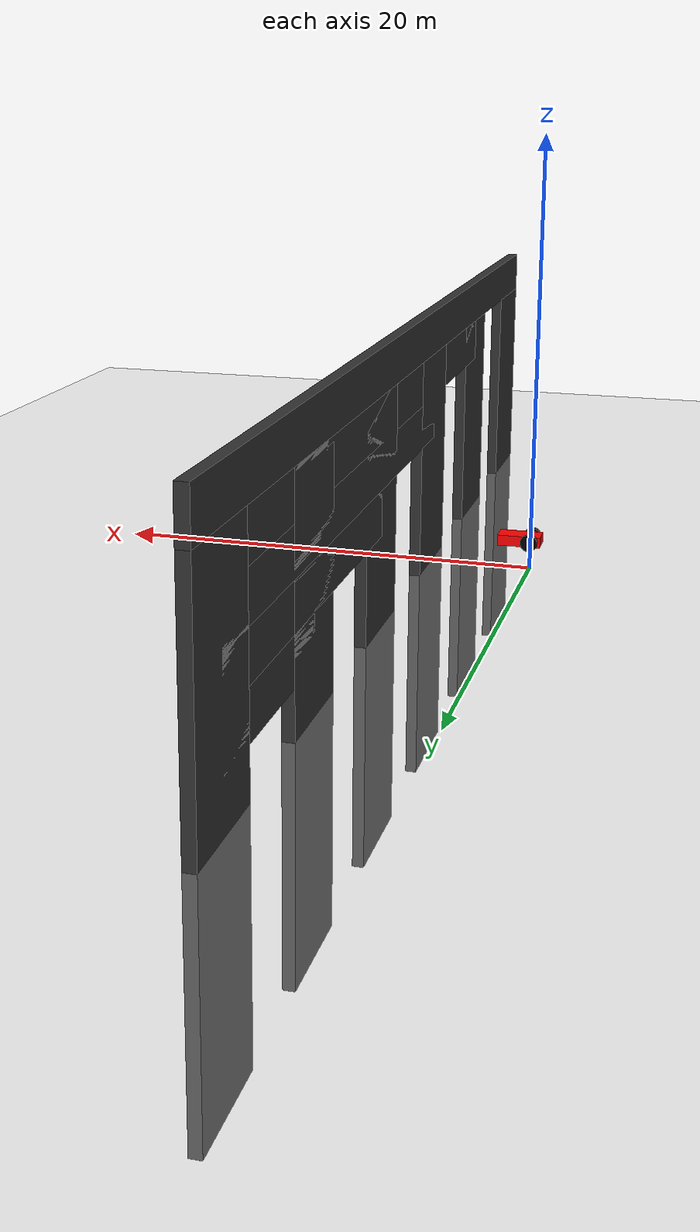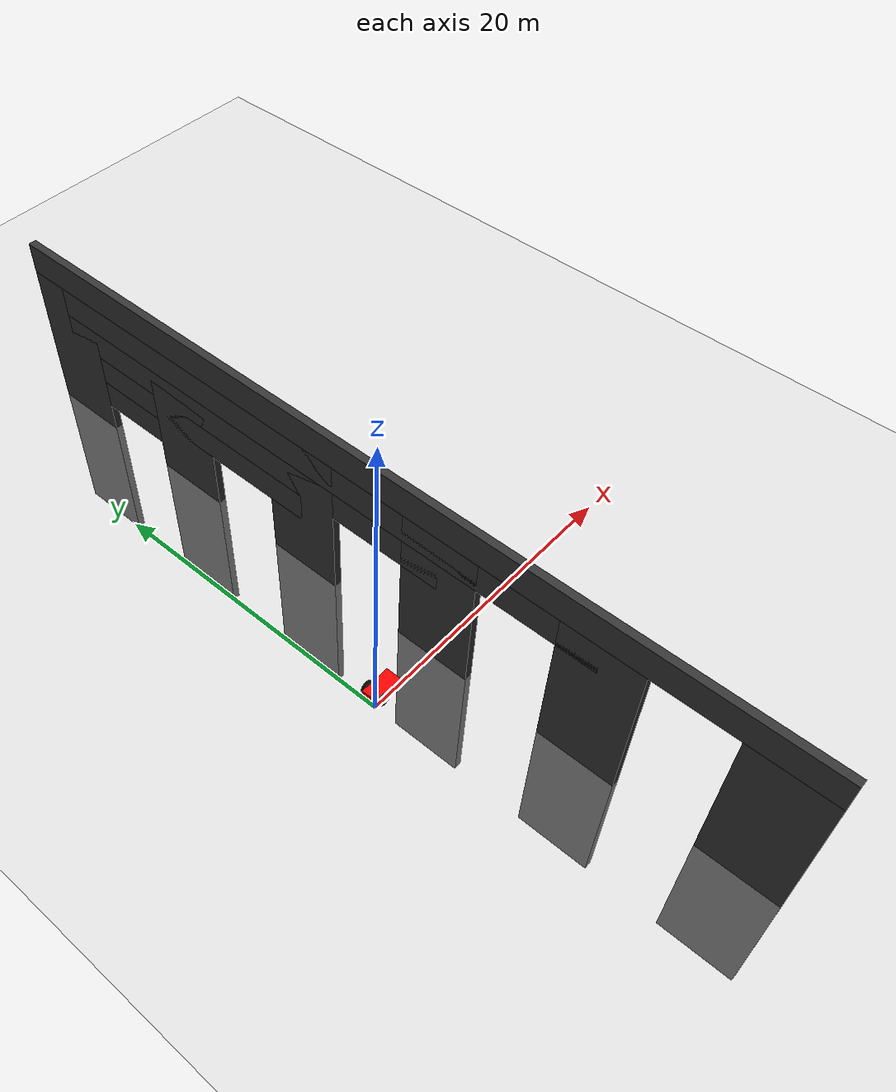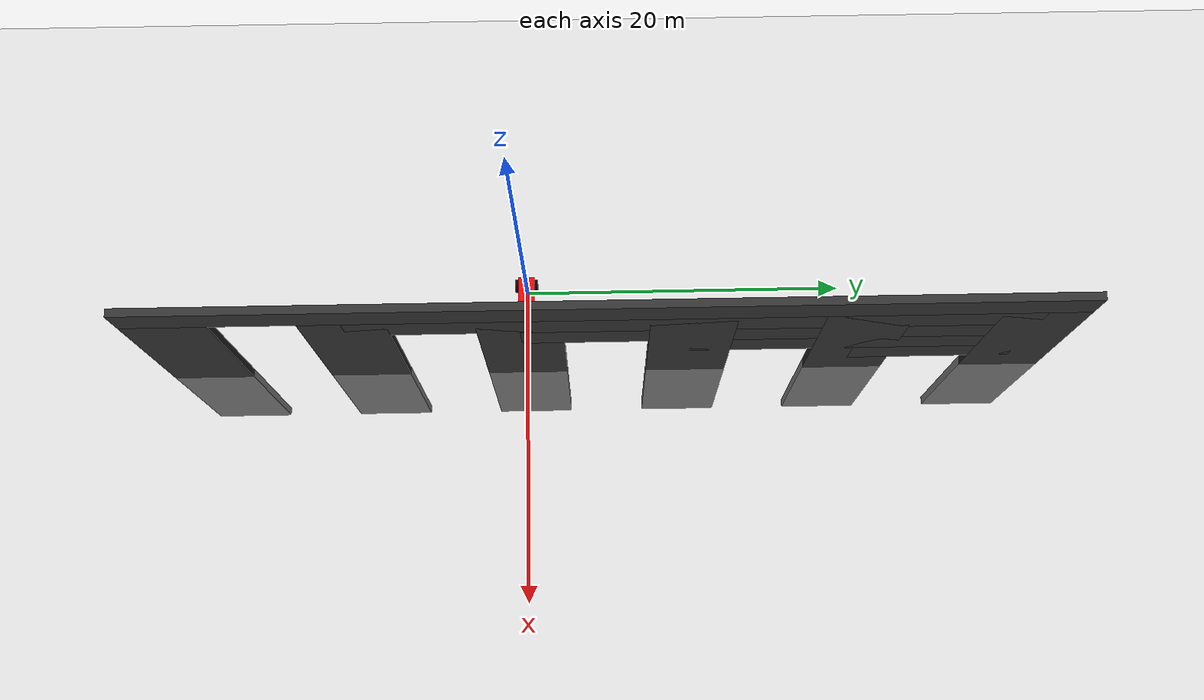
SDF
<?xml version="1.0" ?>
<sdf version="1.8">
    <world name="sensor_world">
        <physics name="1ms" type="ignored">
            <max_step_size>0.001</max_step_size>
            <real_time_factor>1.0</real_time_factor>
        </physics>
        <plugin
            filename="gz-sim-physics-system"
            name="gz::sim::systems::Physics">
        </plugin>
        <plugin
            filename="gz-sim-user-commands-system"
            name="gz::sim::systems::UserCommands">
        </plugin>
        <plugin
            filename="gz-sim-scene-broadcaster-system"
            name="gz::sim::systems::SceneBroadcaster">
        </plugin>
        <plugin
            filename="gz-sim-imu-system"
            name="gz::sim::systems::Imu">
        </plugin>
        <plugin
            filename="gz-sim-sensors-system"
            name="gz::sim::systems::Sensors">
            <render_engine>ogre2</render_engine>
        </plugin>
        <plugin
            filename="gz-sim-contact-system"
            name="gz::sim::systems::Contact">
        </plugin>
        <gui fullscreen="0">

          <!-- 3D scene -->
          <plugin filename="MinimalScene" name="3D View">
            <gz-gui>
              <title>3D View</title>
              <property type="bool" key="showTitleBar">false</property>
              <property type="string" key="state">docked</property>
            </gz-gui>

            <engine>ogre2</engine>
            <scene>scene</scene>
            <ambient_light>0.4 0.4 0.4</ambient_light>
            <background_color>0.8 0.8 0.8</background_color>
            <camera_pose>-6 0 6 0 0.5 0</camera_pose>
            <camera_clip>
              <near>0.25</near>
              <far>25000</far>
            </camera_clip>
          </plugin>

          <plugin filename="EntityContextMenuPlugin" name="Entity context menu">
            <gz-gui>
              <property key="state" type="string">floating</property>
              <property key="width" type="double">5</property>
              <property key="height" type="double">5</property>
              <property key="showTitleBar" type="bool">false</property>
            </gz-gui>
          </plugin>
          <plugin filename="GzSceneManager" name="Scene Manager">
            <gz-gui>
              <property key="resizable" type="bool">false</property>
              <property key="width" type="double">5</property>
              <property key="height" type="double">5</property>
              <property key="state" type="string">floating</property>
              <property key="showTitleBar" type="bool">false</property>
            </gz-gui>
          </plugin>
          <plugin filename="InteractiveViewControl" name="Interactive view control">
            <gz-gui>
              <property key="resizable" type="bool">false</property>
              <property key="width" type="double">5</property>
              <property key="height" type="double">5</property>
              <property key="state" type="string">floating</property>
              <property key="showTitleBar" type="bool">false</property>
            </gz-gui>
          </plugin>
          <plugin filename="CameraTracking" name="Camera Tracking">
            <gz-gui>
              <property key="resizable" type="bool">false</property>
              <property key="width" type="double">5</property>
              <property key="height" type="double">5</property>
              <property key="state" type="string">floating</property>
              <property key="showTitleBar" type="bool">false</property>
            </gz-gui>
          </plugin>
          <plugin filename="MarkerManager" name="Marker manager">
            <gz-gui>
              <property key="resizable" type="bool">false</property>
              <property key="width" type="double">5</property>
              <property key="height" type="double">5</property>
              <property key="state" type="string">floating</property>
              <property key="showTitleBar" type="bool">false</property>
            </gz-gui>
          </plugin>
          <plugin filename="SelectEntities" name="Select Entities">
            <gz-gui>
              <anchors target="Select entities">
                <line own="right" target="right"/>
                <line own="top" target="top"/>
              </anchors>
              <property key="resizable" type="bool">false</property>
              <property key="width" type="double">5</property>
              <property key="height" type="double">5</property>
              <property key="state" type="string">floating</property>
              <property key="showTitleBar" type="bool">false</property>
            </gz-gui>
          </plugin>
          <plugin filename="VisualizationCapabilities" name="Visualization Capabilities">
            <gz-gui>
              <property key="resizable" type="bool">false</property>
              <property key="width" type="double">5</property>
              <property key="height" type="double">5</property>
              <property key="state" type="string">floating</property>
              <property key="showTitleBar" type="bool">false</property>
            </gz-gui>
          </plugin>

          <plugin filename="Spawn" name="Spawn Entities">
            <gz-gui>
              <anchors target="Select entities">
                <line own="right" target="right"/>
                <line own="top" target="top"/>
              </anchors>
              <property key="resizable" type="bool">false</property>
              <property key="width" type="double">5</property>
              <property key="height" type="double">5</property>
              <property key="state" type="string">floating</property>
              <property key="showTitleBar" type="bool">false</property>
            </gz-gui>
          </plugin>

          <plugin filename="WorldControl" name="World control">
            <gz-gui>
              <title>World control</title>
              <property type="bool" key="showTitleBar">false</property>
              <property type="bool" key="resizable">false</property>
              <property type="double" key="height">72</property>
              <property type="double" key="width">121</property>
              <property type="double" key="z">1</property>

              <property type="string" key="state">floating</property>
              <anchors target="3D View">
                <line own="left" target="left"/>
                <line own="bottom" target="bottom"/>
              </anchors>
            </gz-gui>

            <play_pause>true</play_pause>
            <step>true</step>
            <start_paused>true</start_paused>
            <use_event>true</use_event>

          </plugin>

          <plugin filename="WorldStats" name="World stats">
            <gz-gui>
              <title>World stats</title>
              <property type="bool" key="showTitleBar">false</property>
              <property type="bool" key="resizable">false</property>
              <property type="double" key="height">110</property>
              <property type="double" key="width">290</property>
              <property type="double" key="z">1</property>

              <property type="string" key="state">floating</property>
              <anchors target="3D View">
                <line own="right" target="right"/>
                <line own="bottom" target="bottom"/>
              </anchors>
            </gz-gui>

            <sim_time>true</sim_time>
            <real_time>true</real_time>
            <real_time_factor>true</real_time_factor>
            <iterations>true</iterations>
          </plugin>

          <plugin filename="Shapes" name="Shapes">
            <gz-gui>
              <property key="resizable" type="bool">false</property>
              <property key="x" type="double">0</property>
              <property key="y" type="double">0</property>
              <property key="width" type="double">250</property>
              <property key="height" type="double">50</property>
              <property key="state" type="string">floating</property>
              <property key="showTitleBar" type="bool">false</property>
              <property key="cardBackground" type="string">#666666</property>
            </gz-gui>
          </plugin>

          <plugin filename="Lights" name="Lights">
            <gz-gui>
              <property key="resizable" type="bool">false</property>
              <property key="x" type="double">250</property>
              <property key="y" type="double">0</property>
              <property key="width" type="double">150</property>
              <property key="height" type="double">50</property>
              <property key="state" type="string">floating</property>
              <property key="showTitleBar" type="bool">false</property>
              <property key="cardBackground" type="string">#666666</property>
            </gz-gui>
          </plugin>

          <plugin filename="TransformControl" name="Transform control">
            <gz-gui>
              <property key="resizable" type="bool">false</property>
              <property key="x" type="double">0</property>
              <property key="y" type="double">50</property>
              <property key="width" type="double">250</property>
              <property key="height" type="double">50</property>
              <property key="state" type="string">floating</property>
              <property key="showTitleBar" type="bool">false</property>
              <property key="cardBackground" type="string">#777777</property>
            </gz-gui>
          </plugin>

          <plugin filename="Screenshot" name="Screenshot">
            <gz-gui>
              <property key="resizable" type="bool">false</property>
              <property key="x" type="double">250</property>
              <property key="y" type="double">50</property>
              <property key="width" type="double">50</property>
              <property key="height" type="double">50</property>
              <property key="state" type="string">floating</property>
              <property key="showTitleBar" type="bool">false</property>
              <property key="cardBackground" type="string">#777777</property>
            </gz-gui>
          </plugin>

          <plugin filename="VideoRecorder" name="VideoRecorder">
            <gz-gui>
              <property key="resizable" type="bool">false</property>
              <property key="x" type="double">300</property>
              <property key="y" type="double">50</property>
              <property key="width" type="double">50</property>
              <property key="height" type="double">50</property>
              <property key="state" type="string">floating</property>
              <property key="showTitleBar" type="bool">false</property>
              <property key="cardBackground" type="string">#777777</property>
            </gz-gui>

            <record_video>
              <use_sim_time>true</use_sim_time>
              <lockstep>false</lockstep>
              <bitrate>4000000</bitrate>
            </record_video>
          </plugin>

          <plugin filename="ComponentInspector" name="Component inspector">
            <gz-gui>
              <property type="string" key="state">docked_collapsed</property>
            </gz-gui>
          </plugin>

          <plugin filename="EntityTree" name="Entity tree">
            <gz-gui>
              <property type="string" key="state">docked_collapsed</property>
            </gz-gui>
          </plugin>

          <plugin filename="ViewAngle" name="View angle">
            <gz-gui>
              <property type="string" key="state">docked_collapsed</property>
            </gz-gui>
          </plugin>

            <plugin filename="KeyPublisher" name="Key Publisher"/>

        </gui>

        <light type="directional" name="sun">
            <cast_shadows>true</cast_shadows>
            <pose>0 0 10 0 0 0</pose>
            <diffuse>0.8 0.8 0.8 1</diffuse>
            <specular>0.2 0.2 0.2 1</specular>
            <attenuation>
                <range>1000</range>
                <constant>0.9</constant>
                <linear>0.01</linear>
                <quadratic>0.001</quadratic>
            </attenuation>
            <direction>-0.5 0.1 -0.9</direction>
        </light>

        <model name="ground_plane">
            <static>true</static>
            <link name="link">
                <collision name="collision">
                <geometry>
                    <plane>
                    <normal>0 0 1</normal>
                    </plane>
                </geometry>
                </collision>
                <visual name="visual">
                <geometry>
                    <plane>
                    <normal>0 0 1</normal>
                    <size>100 100</size>
                    </plane>
                </geometry>
                <material>
                    <ambient>0.8 0.8 0.8 1</ambient>
                    <diffuse>0.8 0.8 0.8 1</diffuse>
                    <specular>0.8 0.8 0.8 1</specular>
                </material>
                </visual>
            </link>
        </model>

        <model name='vehicle_blue' canonical_link='chassis'>
            <pose relative_to='world'>0 0 1 0 0 0</pose>

            <frame name="camera_frame" attached_to='chassis'>
                <pose>0.8 0 0.5 0 0 0</pose>
            </frame>

            <link name='chassis'>
                <pose relative_to='__model__'>0.5 0 0.4 0 0 0</pose>
                <inertial>
                    <mass>1.14395</mass>
                    <inertia>
                        <ixx>0.126164</ixx>
                        <ixy>0</ixy>
                        <ixz>0</ixz>
                        <iyy>0.416519</iyy>
                        <iyz>0</iyz>
                        <izz>0.481014</izz>
                    </inertia>
                </inertial>
                <visual name='visual'>
                    <geometry>
                        <box>
                            <size>2.0 1.0 0.5</size> <!--question: this size is in meter-->
                        </box>
                    </geometry>
                    <!--let's add color to our link-->
                    <material>
                        <ambient>1.0 0.0 0.0 1</ambient>
                        <diffuse>1.0 0.0 0.0 1</diffuse>
                        <specular>1.0 0.0 0.0 1</specular>
                    </material>
                </visual>
                <collision name='collision'> <!--todo: describe why we need the collision-->
                    <geometry>
                        <box>
                            <size>2.0 1.0 0.5</size>
                        </box>
                    </geometry>
                </collision>

                <sensor name="camera" type="camera">
                    <pose relative_to='camera_frame'>0 0 0 0 0 0</pose>
                    <always_on>true</always_on>
                    <visualize>true</visualize>
                    <update_rate>30</update_rate>
                    <topic>camera/image_raw</topic>
                    <gz_frame_id>camera_rgb_frame</gz_frame_id>
                    <camera name="intel_realsense_r200">
                        <camera_info_topic>camera/camera_info</camera_info_topic>
                            <horizontal_fov>1.02974</horizontal_fov>
                            <image>
                                <width>1920</width>
                                <height>1080</height>
                                <format>R8G8B8</format>
                            </image>
                            <clip>
                                <near>0.02</near>
                                <far>300</far>
                            </clip>
                            <noise>
                                <type>gaussian</type>
                                <mean>0.0</mean>
                                <stddev>0.007</stddev>
                            </noise>
                    </camera>
                </sensor>
            </link>

            <!--let's build the left wheel-->
            <link name='left_wheel'>
                <pose relative_to="chassis">-0.5 0.6 0 -1.5707 0 0</pose> <!--angles are in radian-->
                <inertial>
                    <mass>2</mass>
                    <inertia>
                        <ixx>0.145833</ixx>
                        <ixy>0</ixy>
                        <ixz>0</ixz>
                        <iyy>0.145833</iyy>
                        <iyz>0</iyz>
                        <izz>0.125</izz>
                    </inertia>
                </inertial>
                <visual name='visual'>
                    <geometry>
                        <cylinder>
                            <radius>0.4</radius>
                            <length>0.2</length>
                        </cylinder>
                    </geometry>
                    <material>
                        <ambient>0.0 0.0 0.0 1</ambient>
                        <diffuse>0.0 0.0 0.0 1</diffuse>
                        <specular>0.0 0.0 0.0 1</specular>
                    </material>
                </visual>
                <collision name='collision'>
                    <geometry>
                        <cylinder>
                            <radius>0.4</radius>
                            <length>0.2</length>
                        </cylinder>
                    </geometry>
                </collision>
            </link>

            <!--copy and paste for right wheel but change position-->
            <link name='right_wheel'>
                <pose relative_to="chassis">-0.5 -0.6 0 -1.5707 0 0</pose> <!--angles are in radian-->
                <inertial>
                    <mass>1</mass>
                    <inertia>
                        <ixx>0.145833</ixx>
                        <ixy>0</ixy>
                        <ixz>0</ixz>
                        <iyy>0.145833</iyy>
                        <iyz>0</iyz>
                        <izz>0.125</izz>
                    </inertia>
                </inertial>
                <visual name='visual'>
                    <geometry>
                        <cylinder>
                            <radius>0.4</radius>
                            <length>0.2</length>
                        </cylinder>
                    </geometry>
                    <material>
                        <ambient>0.0 0.0 0.0 1</ambient>
                        <diffuse>0.0 0.0 0.0 1</diffuse>
                        <specular>0.0 0.0 0.0 1</specular>
                    </material>
                </visual>
                <collision name='collision'>
                    <geometry>
                        <cylinder>
                            <radius>0.4</radius>
                            <length>0.2</length>
                        </cylinder>
                    </geometry>
                </collision>
            </link>

            <frame name="caster_frame" attached_to='chassis'>
                <pose>0.8 0 -0.2 0 0 0</pose>
            </frame>

            <!--caster wheel-->
            <link name='caster'>
                <pose relative_to='caster_frame'/>
                <inertial>
                    <mass>1</mass>
                    <inertia>
                        <ixx>0.1</ixx>
                        <ixy>0</ixy>
                        <ixz>0</ixz>
                        <iyy>0.1</iyy>
                        <iyz>0</iyz>
                        <izz>0.1</izz>
                    </inertia>
                </inertial>
                <visual name='visual'>
                    <geometry>
                        <sphere>
                            <radius>0.2</radius>
                        </sphere>
                    </geometry>
                    <material>
                        <ambient>0.0 1 0.0 1</ambient>
                        <diffuse>0.0 1 0.0 1</diffuse>
                        <specular>0.0 1 0.0 1</specular>
                    </material>
                </visual>
                <collision name='collision'>
                    <geometry>
                        <sphere>
                            <radius>0.2</radius>
                        </sphere>
                    </geometry>
                </collision>
            </link>

            <!--connecting these links together using joints-->
            <joint name='left_wheel_joint' type='revolute'> <!--continous joint is not supported yet-->
                <pose relative_to='left_wheel'/>
                <parent>chassis</parent>
                <child>left_wheel</child>
                <axis>
                    <xyz expressed_in='__model__'>0 1 0</xyz> <!--can be descired to any frame or even arbitrary frames-->
                    <limit>
                        <lower>-1.79769e+308</lower>    <!--negative infinity-->
                        <upper>1.79769e+308</upper>     <!--positive infinity-->
                    </limit>
                </axis>
            </joint>

            <joint name='right_wheel_joint' type='revolute'>
                <pose relative_to='right_wheel'/>
                <parent>chassis</parent>
                <child>right_wheel</child>
                <axis>
                    <xyz expressed_in='__model__'>0 1 0</xyz>
                    <limit>
                        <lower>-1.79769e+308</lower>    <!--negative infinity-->
                        <upper>1.79769e+308</upper>     <!--positive infinity-->
                    </limit>
                </axis>
            </joint>

            <!--different type of joints ball joint--> <!--defult value is the child-->
            <joint name='caster_wheel' type='ball'>
                <parent>chassis</parent>
                <child>caster</child>
            </joint>

            <!--diff drive plugin-->
            <plugin
                filename="gz-sim-diff-drive-system"
                name="gz::sim::systems::DiffDrive">
                <left_joint>left_wheel_joint</left_joint>
                <right_joint>right_wheel_joint</right_joint>
                <wheel_separation>1.2</wheel_separation>
                <wheel_radius>0.4</wheel_radius>
                <odom_publish_frequency>1</odom_publish_frequency>
                <topic>cmd_vel</topic>
            </plugin>
        </model>

        <!--wall-->
        <model name='wall'>
            <static>true</static>
            <pose>5 10 0 0 0 0</pose><!--pose relative to the world-->
            <link name='box'>
                <pose/>
                <inertial> <!--inertial properties of the link mass, inertia matix-->
                    <mass>1.14395</mass>
                    <inertia>
                        <ixx>9.532917</ixx>
                        <ixy>0</ixy>
                        <ixz>0</ixz>
                        <iyy>0.023832</iyy>
                        <iyz>0</iyz>
                        <izz>9.556749</izz>
                    </inertia>
                </inertial>
                <visual name='visual'>
                    <geometry>
                        <box>
                            <size>0.5 5.0 20.0</size>
                        </box>
                    </geometry>
                    <!--let's add color to our link-->
                    <material>
                        <ambient>0.2 0.2 0.2 1</ambient>
                        <diffuse>0.2 0.2 0.2 1</diffuse>
                        <specular>1.0 1.0 1.0 1</specular>
                    </material>
                </visual>
                <collision name='collision'> <!--todo: describe why we need the collision-->
                    <geometry>
                        <box>
                            <size>0.5 5.0 20.0</size>
                        </box>
                    </geometry>
                </collision>
                <sensor name='sensor_contact' type='contact'>
                    <contact>
                        <collision>collision</collision>
                    </contact>
                </sensor>
            </link>
            <plugin filename="gz-sim-touchplugin-system"
                    name="gz::sim::systems::TouchPlugin">
                <target>vehicle_blue</target>
                <namespace>wall</namespace>
                <time>0.001</time>
                <enabled>true</enabled>
            </plugin>
        </model>

        <model name='wall2'>
            <static>true</static>
            <pose>5 0 0 0 0 0</pose><!--pose relative to the world-->
            <link name='box'>
                <pose/>
                <inertial> <!--inertial properties of the link mass, inertia matix-->
                    <mass>1.14395</mass>
                    <inertia>
                        <ixx>9.532917</ixx>
                        <ixy>0</ixy>
                        <ixz>0</ixz>
                        <iyy>0.023832</iyy>
                        <iyz>0</iyz>
                        <izz>9.556749</izz>
                    </inertia>
                </inertial>
                <visual name='visual'>
                    <geometry>
                        <box>
                            <size>0.5 5.0 20.0</size>
                        </box>
                    </geometry>
                    <!--let's add color to our link-->
                    <material>
                        <ambient>0.2 0.2 0.2 1</ambient>
                        <diffuse>0.2 0.2 0.2 1</diffuse>
                        <specular>1.0 1.0 1.0 1</specular>
                    </material>
                </visual>
                <collision name='collision'> <!--todo: describe why we need the collision-->
                    <geometry>
                        <box>
                            <size>0.5 5.0 20.0</size>
                        </box>
                    </geometry>
                </collision>
                <sensor name='sensor_contact' type='contact'>
                    <contact>
                        <collision>collision</collision>
                    </contact>
                </sensor>
            </link>
            <plugin filename="gz-sim-touchplugin-system"
                    name="gz::sim::systems::TouchPlugin">
                <target>vehicle_blue</target>
                <namespace>wall</namespace>
                <time>0.001</time>
                <enabled>true</enabled>
            </plugin>
        </model>

        <model name='wall3'>
            <static>true</static>
            <pose>5 -10 0 0 0 0</pose><!--pose relative to the world-->
            <link name='box'>
                <pose/>
                <inertial> <!--inertial properties of the link mass, inertia matix-->
                    <mass>1.14395</mass>
                    <inertia>
                        <ixx>9.532917</ixx>
                        <ixy>0</ixy>
                        <ixz>0</ixz>
                        <iyy>0.023832</iyy>
                        <iyz>0</iyz>
                        <izz>9.556749</izz>
                    </inertia>
                </inertial>
                <visual name='visual'>
                    <geometry>
                        <box>
                            <size>0.5 5.0 20.0</size>
                        </box>
                    </geometry>
                    <!--let's add color to our link-->
                    <material>
                        <ambient>0.2 0.2 0.2 1</ambient>
                        <diffuse>0.2 0.2 0.2 1</diffuse>
                        <specular>1.0 1.0 1.0 1</specular>
                    </material>
                </visual>
                <collision name='collision'> <!--todo: describe why we need the collision-->
                    <geometry>
                        <box>
                            <size>0.5 5.0 20.0</size>
                        </box>
                    </geometry>
                </collision>
                <sensor name='sensor_contact' type='contact'>
                    <contact>
                        <collision>collision</collision>
                    </contact>
                </sensor>
            </link>
            <plugin filename="gz-sim-touchplugin-system"
                    name="gz::sim::systems::TouchPlugin">
                <target>vehicle_blue</target>
                <namespace>wall</namespace>
                <time>0.001</time>
                <enabled>true</enabled>
            </plugin>
        </model>

        <model name='wall4'>
            <static>true</static>
            <pose>5 -20 0 0 0 0</pose><!--pose relative to the world-->
            <link name='box'>
                <pose/>
                <inertial> <!--inertial properties of the link mass, inertia matix-->
                    <mass>1.14395</mass>
                    <inertia>
                        <ixx>9.532917</ixx>
                        <ixy>0</ixy>
                        <ixz>0</ixz>
                        <iyy>0.023832</iyy>
                        <iyz>0</iyz>
                        <izz>9.556749</izz>
                    </inertia>
                </inertial>
                <visual name='visual'>
                    <geometry>
                        <box>
                            <size>0.5 5.0 20.0</size>
                        </box>
                    </geometry>
                    <!--let's add color to our link-->
                    <material>
                        <ambient>0.2 0.2 0.2 1</ambient>
                        <diffuse>0.2 0.2 0.2 1</diffuse>
                        <specular>1.0 1.0 1.0 1</specular>
                    </material>
                </visual>
                <collision name='collision'> <!--todo: describe why we need the collision-->
                    <geometry>
                        <box>
                            <size>0.5 5.0 20.0</size>
                        </box>
                    </geometry>
                </collision>
                <sensor name='sensor_contact' type='contact'>
                    <contact>
                        <collision>collision</collision>
                    </contact>
                </sensor>
            </link>
            <plugin filename="gz-sim-touchplugin-system"
                    name="gz::sim::systems::TouchPlugin">
                <target>vehicle_blue</target>
                <namespace>wall</namespace>
                <time>0.001</time>
                <enabled>true</enabled>
            </plugin>
        </model>

        <model name='wall5'>
            <static>true</static>
            <pose>5 20 0 0 0 0</pose><!--pose relative to the world-->
            <link name='box'>
                <pose/>
                <inertial> <!--inertial properties of the link mass, inertia matix-->
                    <mass>1.14395</mass>
                    <inertia>
                        <ixx>9.532917</ixx>
                        <ixy>0</ixy>
                        <ixz>0</ixz>
                        <iyy>0.023832</iyy>
                        <iyz>0</iyz>
                        <izz>9.556749</izz>
                    </inertia>
                </inertial>
                <visual name='visual'>
                    <geometry>
                        <box>
                            <size>0.5 5.0 20.0</size>
                        </box>
                    </geometry>
                    <!--let's add color to our link-->
                    <material>
                        <ambient>0.2 0.2 0.2 1</ambient>
                        <diffuse>0.2 0.2 0.2 1</diffuse>
                        <specular>1.0 1.0 1.0 1</specular>
                    </material>
                </visual>
                <collision name='collision'> <!--todo: describe why we need the collision-->
                    <geometry>
                        <box>
                            <size>0.5 5.0 20.0</size>
                        </box>
                    </geometry>
                </collision>
                <sensor name='sensor_contact' type='contact'>
                    <contact>
                        <collision>collision</collision>
                    </contact>
                </sensor>
            </link>
            <plugin filename="gz-sim-touchplugin-system"
                    name="gz::sim::systems::TouchPlugin">
                <target>vehicle_blue</target>
                <namespace>wall</namespace>
                <time>0.001</time>
                <enabled>true</enabled>
            </plugin>
        </model>

        <model name='wall6'>
            <static>true</static>
            <pose>5 30 0 0 0 0</pose><!--pose relative to the world-->
            <link name='box'>
                <pose/>
                <inertial> <!--inertial properties of the link mass, inertia matix-->
                    <mass>1.14395</mass>
                    <inertia>
                        <ixx>9.532917</ixx>
                        <ixy>0</ixy>
                        <ixz>0</ixz>
                        <iyy>0.023832</iyy>
                        <iyz>0</iyz>
                        <izz>9.556749</izz>
                    </inertia>
                </inertial>
                <visual name='visual'>
                    <geometry>
                        <box>
                            <size>0.5 5.0 20.0</size>
                        </box>
                    </geometry>
                    <!--let's add color to our link-->
                    <material>
                        <ambient>0.2 0.2 0.2 1</ambient>
                        <diffuse>0.2 0.2 0.2 1</diffuse>
                        <specular>1.0 1.0 1.0 1</specular>
                    </material>
                </visual>
                <collision name='collision'> <!--todo: describe why we need the collision-->
                    <geometry>
                        <box>
                            <size>0.5 5.0 20.0</size>
                        </box>
                    </geometry>
                </collision>
                <sensor name='sensor_contact' type='contact'>
                    <contact>
                        <collision>collision</collision>
                    </contact>
                </sensor>
            </link>
            <plugin filename="gz-sim-touchplugin-system"
                    name="gz::sim::systems::TouchPlugin">
                <target>vehicle_blue</target>
                <namespace>wall</namespace>
                <time>0.001</time>
                <enabled>true</enabled>
            </plugin>
        </model>

        <model name='top 1'>
            <static>true</static>
            <pose>5 5 11 0 0 0</pose><!--pose relative to the world-->
            <link name='box'>
                <pose/>
                <inertial> <!--inertial properties of the link mass, inertia matix-->
                    <mass>1.14395</mass>
                    <inertia>
                        <ixx>9.532917</ixx>
                        <ixy>0</ixy>
                        <ixz>0</ixz>
                        <iyy>0.023832</iyy>
                        <iyz>0</iyz>
                        <izz>9.556749</izz>
                    </inertia>
                </inertial>
                <visual name='visual'>
                    <geometry>
                        <box>
                            <size>0.5 55.0 2.0</size>
                        </box>
                    </geometry>
                    <!--let's add color to our link-->
                    <material>
                        <ambient>0.2 0.2 0.2 1</ambient>
                        <diffuse>0.2 0.2 0.2 1</diffuse>
                        <specular>1.0 1.0 1.0 1</specular>
                    </material>
                </visual>
                <collision name='collision'> <!--todo: describe why we need the collision-->
                    <geometry>
                        <box>
                            <size>0.5 50.0 2.0</size>
                        </box>
                    </geometry>
                </collision>
                <sensor name='sensor_contact' type='contact'>
                    <contact>
                        <collision>collision</collision>
                    </contact>
                </sensor>
            </link>
            <plugin filename="gz-sim-touchplugin-system"
                    name="gz::sim::systems::TouchPlugin">
                <target>vehicle_blue</target>
                <namespace>wall</namespace>
                <time>0.001</time>
                <enabled>true</enabled>
            </plugin>
        </model>

        <model name='top 2'>
            <static>true</static>
            <pose>5 10 9 0 0 0</pose><!--pose relative to the world-->
            <link name='box'>
                <pose/>
                <inertial> <!--inertial properties of the link mass, inertia matix-->
                    <mass>1.14395</mass>
                    <inertia>
                        <ixx>9.532917</ixx>
                        <ixy>0</ixy>
                        <ixz>0</ixz>
                        <iyy>0.023832</iyy>
                        <iyz>0</iyz>
                        <izz>9.556749</izz>
                    </inertia>
                </inertial>
                <visual name='visual'>
                    <geometry>
                        <box>
                            <size>0.5 40.0 2.0</size>
                        </box>
                    </geometry>
                    <!--let's add color to our link-->
                    <material>
                        <ambient>0.2 0.2 0.2 1</ambient>
                        <diffuse>0.2 0.2 0.2 1</diffuse>
                        <specular>1.0 1.0 1.0 1</specular>
                    </material>
                </visual>
                <collision name='collision'> <!--todo: describe why we need the collision-->
                    <geometry>
                        <box>
                            <size>0.5 40.0 5.0</size>
                        </box>
                    </geometry>
                </collision>
                <sensor name='sensor_contact' type='contact'>
                    <contact>
                        <collision>collision</collision>
                    </contact>
                </sensor>
            </link>
            <plugin filename="gz-sim-touchplugin-system"
                    name="gz::sim::systems::TouchPlugin">
                <target>vehicle_blue</target>
                <namespace>wall</namespace>
                <time>0.001</time>
                <enabled>true</enabled>
            </plugin>
        </model>

        <model name='top 3'>
            <static>true</static>
            <pose>5 15 7 0 0 0</pose><!--pose relative to the world-->
            <link name='box'>
                <pose/>
                <inertial> <!--inertial properties of the link mass, inertia matix-->
                    <mass>1.14395</mass>
                    <inertia>
                        <ixx>9.532917</ixx>
                        <ixy>0</ixy>
                        <ixz>0</ixz>
                        <iyy>0.023832</iyy>
                        <iyz>0</iyz>
                        <izz>9.556749</izz>
                    </inertia>
                </inertial>
                <visual name='visual'>
                    <geometry>
                        <box>
                            <size>0.5 30.0 2.0</size>
                        </box>
                    </geometry>
                    <!--let's add color to our link-->
                    <material>
                        <ambient>0.2 0.2 0.2 1</ambient>
                        <diffuse>0.2 0.2 0.2 1</diffuse>
                        <specular>1.0 1.0 1.0 1</specular>
                    </material>
                </visual>
                <collision name='collision'> <!--todo: describe why we need the collision-->
                    <geometry>
                        <box>
                            <size>0.5 30.0 5.0</size>
                        </box>
                    </geometry>
                </collision>
                <sensor name='sensor_contact' type='contact'>
                    <contact>
                        <collision>collision</collision>
                    </contact>
                </sensor>
            </link>
            <plugin filename="gz-sim-touchplugin-system"
                    name="gz::sim::systems::TouchPlugin">
                <target>vehicle_blue</target>
                <namespace>wall</namespace>
                <time>0.001</time>
                <enabled>true</enabled>
            </plugin>
        </model>

        <model name='top 4'>
            <static>true</static>
            <pose>5 20 5 0 0 0</pose><!--pose relative to the world-->
            <link name='box'>
                <pose/>
                <inertial> <!--inertial properties of the link mass, inertia matix-->
                    <mass>1.14395</mass>
                    <inertia>
                        <ixx>9.532917</ixx>
                        <ixy>0</ixy>
                        <ixz>0</ixz>
                        <iyy>0.023832</iyy>
                        <iyz>0</iyz>
                        <izz>9.556749</izz>
                    </inertia>
                </inertial>
                <visual name='visual'>
                    <geometry>
                        <box>
                            <size>0.5 20.0 2.0</size>
                        </box>
                    </geometry>
                    <!--let's add color to our link-->
                    <material>
                        <ambient>0.2 0.2 0.2 1</ambient>
                        <diffuse>0.2 0.2 0.2 1</diffuse>
                        <specular>1.0 1.0 1.0 1</specular>
                    </material>
                </visual>
                <collision name='collision'> <!--todo: describe why we need the collision-->
                    <geometry>
                        <box>
                            <size>0.5 20.0 5.0</size>
                        </box>
                    </geometry>
                </collision>
                <sensor name='sensor_contact' type='contact'>
                    <contact>
                        <collision>collision</collision>
                    </contact>
                </sensor>
            </link>
            <plugin filename="gz-sim-touchplugin-system"
                    name="gz::sim::systems::TouchPlugin">
                <target>vehicle_blue</target>
                <namespace>wall</namespace>
                <time>0.001</time>
                <enabled>true</enabled>
            </plugin>
        </model>

        <model name='top 5'>
            <static>true</static>
            <pose>5 25 3 0 0 0</pose><!--pose relative to the world-->
            <link name='box'>
                <pose/>
                <inertial> <!--inertial properties of the link mass, inertia matix-->
                    <mass>1.14395</mass>
                    <inertia>
                        <ixx>9.532917</ixx>
                        <ixy>0</ixy>
                        <ixz>0</ixz>
                        <iyy>0.023832</iyy>
                        <iyz>0</iyz>
                        <izz>9.556749</izz>
                    </inertia>
                </inertial>
                <visual name='visual'>
                    <geometry>
                        <box>
                            <size>0.5 10.0 2.0</size>
                        </box>
                    </geometry>
                    <!--let's add color to our link-->
                    <material>
                        <ambient>0.2 0.2 0.2 1</ambient>
                        <diffuse>0.2 0.2 0.2 1</diffuse>
                        <specular>1.0 1.0 1.0 1</specular>
                    </material>
                </visual>
                <collision name='collision'> <!--todo: describe why we need the collision-->
                    <geometry>
                        <box>
                            <size>0.5 10.0 5.0</size>
                        </box>
                    </geometry>
                </collision>
                <sensor name='sensor_contact' type='contact'>
                    <contact>
                        <collision>collision</collision>
                    </contact>
                </sensor>
            </link>
            <plugin filename="gz-sim-touchplugin-system"
                    name="gz::sim::systems::TouchPlugin">
                <target>vehicle_blue</target>
                <namespace>wall</namespace>
                <time>0.001</time>
                <enabled>true</enabled>
            </plugin>
        </model>

        <!-- Moving Left-->
        <plugin filename="gz-sim-triggered-publisher-system"
                name="gz::sim::systems::TriggeredPublisher">
            <input type="gz.msgs.Int32" topic="/keyboard/keypress">
                <match field="data">16777234</match>
            </input>
            <output type="gz.msgs.Twist" topic="/cmd_vel">
                linear: {x: 0.0}, angular: {z: 0.5}
            </output>
        </plugin>
        <!-- Moving Forward-->
        <plugin filename="gz-sim-triggered-publisher-system"
                name="gz::sim::systems::TriggeredPublisher">
            <input type="gz.msgs.Int32" topic="/keyboard/keypress">
                <match field="data">16777235</match>
            </input>
            <output type="gz.msgs.Twist" topic="/cmd_vel">
                linear: {x: 0.5}, angular: {z: 0.0}
            </output>
        </plugin>
        <!-- Moving Right-->
        <plugin filename="gz-sim-triggered-publisher-system"
                name="gz::sim::systems::TriggeredPublisher">
            <input type="gz.msgs.Int32" topic="/keyboard/keypress">
                <match field="data">16777236</match>
            </input>
            <output type="gz.msgs.Twist" topic="/cmd_vel">
                linear: {x: 0.0}, angular: {z: -0.5}
            </output>
        </plugin>
        <!-- Moving Backward-->
        <plugin filename="gz-sim-triggered-publisher-system"
                name="gz::sim::systems::TriggeredPublisher">
            <input type="gz.msgs.Int32" topic="/keyboard/keypress">
                <match field="data">16777237</match>
            </input>
            <output type="gz.msgs.Twist" topic="/cmd_vel">
                linear: {x: -0.5}, angular: {z: 0.0}
            </output>
        </plugin>

        <!--stop when hit the wall-->
        <plugin filename="gz-sim-triggered-publisher-system"
                name="gz::sim::systems::TriggeredPublisher">
            <input type="gz.msgs.Boolean" topic="/wall/touched">
                <match>data: true</match>
            </input>
            <output type="gz.msgs.Twist" topic="/cmd_vel">
                linear: {x: 0.0}, angular: {z: 0.0}
            </output>
        </plugin>
    </world>
</sdf>
